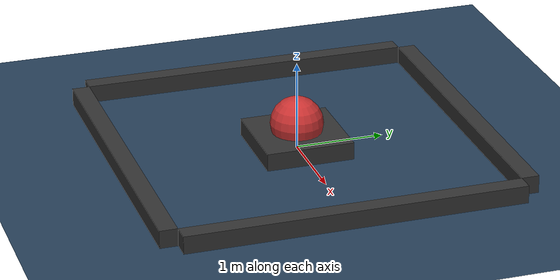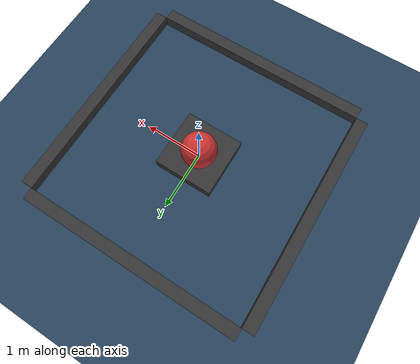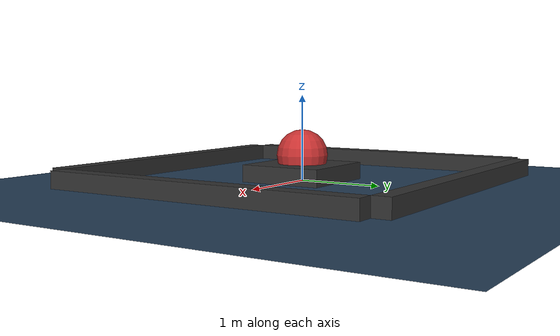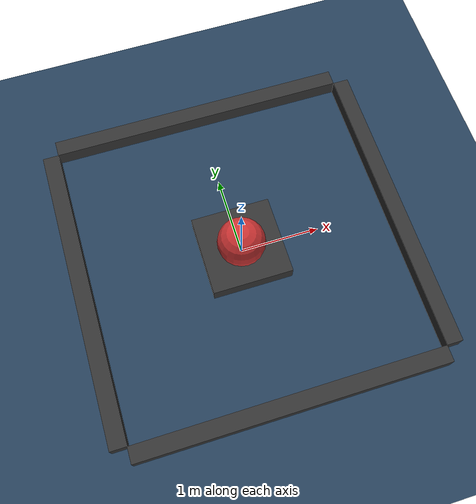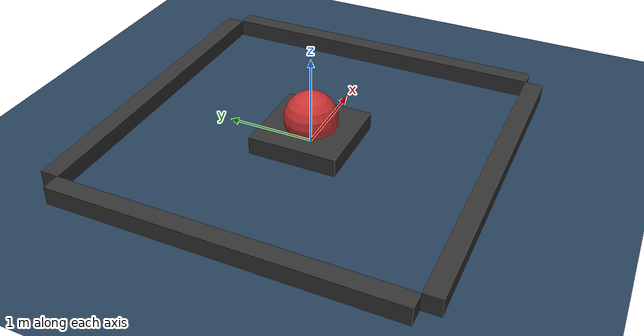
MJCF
<mujoco>
  <visual>
    <global offwidth="1920" offheight="1080" fovy="60" />
    <scale framelength="0.5" framewidth="0.05" />
  </visual>
  <asset>
    <texture type="skybox" builtin="gradient" rgb1="1 1 1" rgb2=".6 .8 1" width="256" height="256"/>
    <texture type="2d" name="groundplane" builtin="checker" mark="edge" rgb1="0.2 0.3 0.4" rgb2="0.1 0.2 0.3"
      markrgb="0.8 0.8 0.8" width="300" height="300"/>
    <material name="groundplane" texture="groundplane" texuniform="true" texrepeat="5 5" reflectance="0.2"/>
  </asset>

  <worldbody>
    <light pos="1.5 1.5 5.0" diffuse="2 1.9 1.9"/>
    <light pos="-1.5 -1.5 5.0" diffuse="2 1.9 1.9"/>

    <geom name="floor" pos="0 0 -0.05" size="0 0 0.05" type="plane" material="groundplane"/>

    <body name="obs" pos="0 0 0.1">
      <geom type="box" pos="0 2 0" size="1.9 0.1 0.1" rgba="0.2 0.2 0.2 1"/>
      <geom type="box" pos="0 -2 0" size="1.9 0.1 0.1" rgba="0.2 0.2 0.2 1"/>
      <geom type="box" pos="2 0 0" size="0.1 1.9 0.1" rgba="0.2 0.2 0.2 1"/>
      <geom type="box" pos="-2 0 0" size="0.1 1.9 0.1" rgba="0.2 0.2 0.2 1"/>

      <geom type="box" pos="0 0 0" size="0.5 0.5 0.1" rgba="0.2 0.2 0.2 1"/>
    </body>

    <body name="a1" pos="0 0 0.3">
      <!-- xy translation + yaw -->
      <joint name="a1_x" type="slide" axis="1 0 0" range="-2 2"/>
      <joint name="a1_y" type="slide" axis="0 1 0" range="-2 2"/>
      <joint name="a1_yaw" type="hinge" axis="0 0 1" range="-3.14 3.14"/>
      <!-- cylinder geometry -->
      <geom type="sphere" size="0.3" rgba="0.8 0.2 0.2 1"/>
    </body>

    <body name="a2" pos="0.0 0.0 0.3">
      <joint name="a2_x" type="slide" axis="1 0 0" range="-2 2"/>
      <joint name="a2_y" type="slide" axis="0 1 0" range="-2 2"/>
      <joint name="a2_yaw" type="hinge" axis="0 0 1" range="-3.14 3.14"/>
      <geom type="sphere" size="0.3" rgba="0.2 0.2 0.8 1"/>
    </body>

  </worldbody>

  <keyframe>
    <key name="home" qpos="0 0 0 0 0 0"/>
  </keyframe>
</mujoco>
